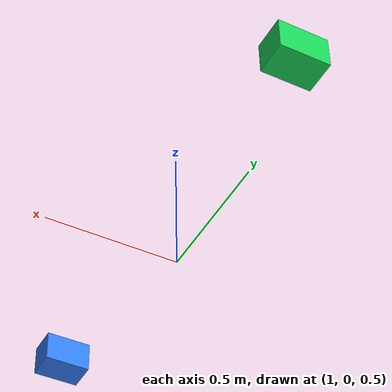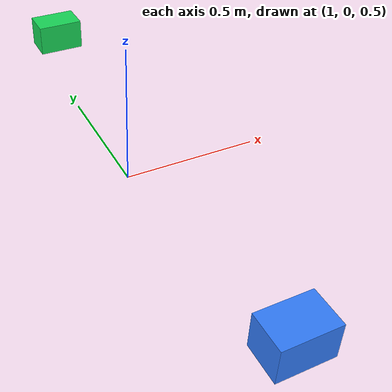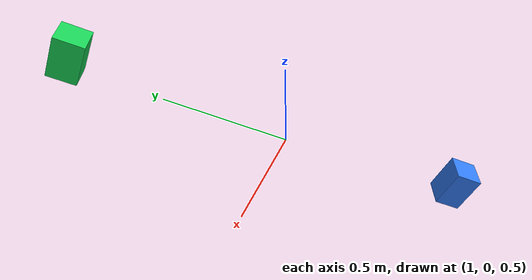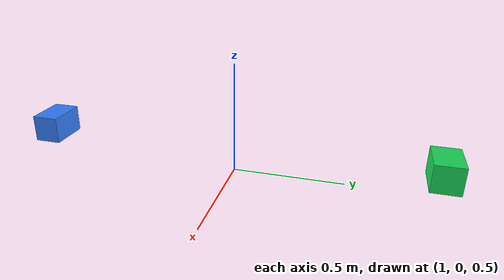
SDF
<?xml version='1.0' encoding='utf-8'?>
<sdf version="1.9">
  <model name="side_radar_rig">
    <static>true</static>
    <link name="radar_side_left_mount">
      <visual name="side_left_housing">
        <pose>1.05 0.88 0.65 0 0 0</pose>
        <geometry>
          <box>
            <size>0.18 0.12 0.12</size>
          </box>
        </geometry>
        <material>
          <ambient>0.1 0.85 0.35 1</ambient>
          <diffuse>0.1 0.85 0.35 1</diffuse>
        </material>
      </visual>
      <sensor name="side_left" type="gpu_lidar">
        <pose>1.05 0.97 0.65 0 0 1.9198621772</pose>
        <always_on>true</always_on>
        <update_rate>20</update_rate>
        <lidar>
          <scan>
            <horizontal>
              <samples>240</samples>
              <resolution>1</resolution>
              <min_angle>-1.0471975512</min_angle>
              <max_angle>1.0471975512</max_angle>
            </horizontal>
            <vertical>
              <samples>16</samples>
              <resolution>1</resolution>
              <min_angle>-0.2617993878</min_angle>
              <max_angle>0.2617993878</max_angle>
            </vertical>
          </scan>
          <range>
            <min>0.3</min>
            <max>30</max>
            <resolution>0.05</resolution>
          </range>
        </lidar>
      </sensor>
    </link>
    <link name="radar_side_right_mount">
      <visual name="side_right_housing">
        <pose>1.05 -0.88 0.65 0 0 0</pose>
        <geometry>
          <box>
            <size>0.18 0.12 0.12</size>
          </box>
        </geometry>
        <material>
          <ambient>0.2 0.5 1 1</ambient>
          <diffuse>0.2 0.5 1 1</diffuse>
        </material>
      </visual>
      <sensor name="side_right" type="gpu_lidar">
        <pose>1.05 -0.97 0.65 0 0 -1.9198621772</pose>
        <always_on>true</always_on>
        <update_rate>20</update_rate>
        <lidar>
          <scan>
            <horizontal>
              <samples>240</samples>
              <resolution>1</resolution>
              <min_angle>-1.0471975512</min_angle>
              <max_angle>1.0471975512</max_angle>
            </horizontal>
            <vertical>
              <samples>16</samples>
              <resolution>1</resolution>
              <min_angle>-0.2617993878</min_angle>
              <max_angle>0.2617993878</max_angle>
            </vertical>
          </scan>
          <range>
            <min>0.3</min>
            <max>30</max>
            <resolution>0.05</resolution>
          </range>
        </lidar>
      </sensor>
    </link>
  </model>
</sdf>
